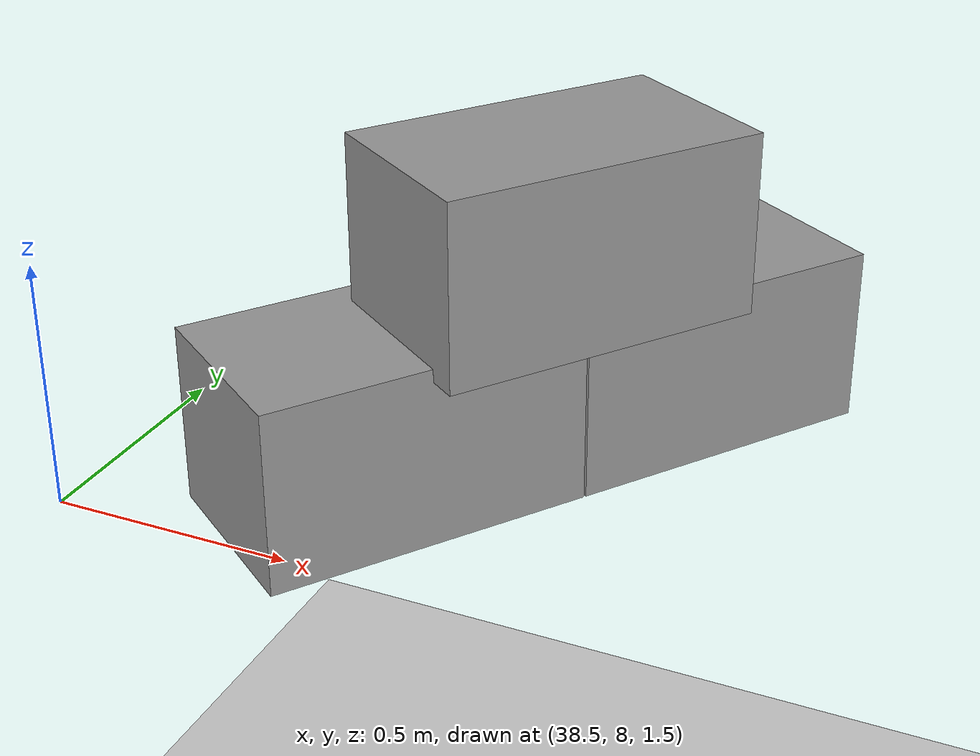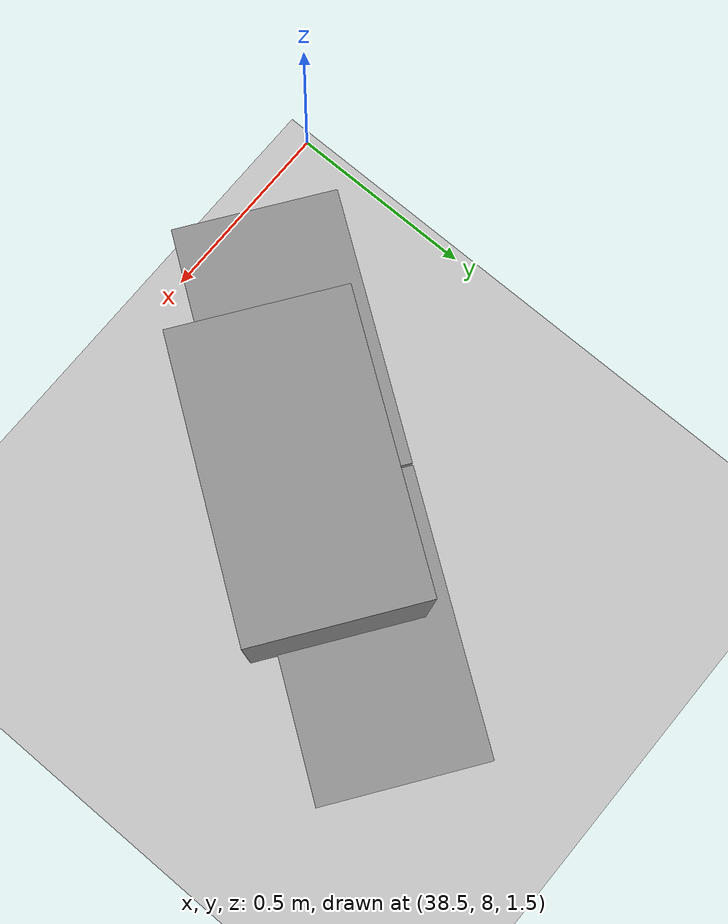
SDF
<sdf version="1.7">
 <world name="default">
  <model name="ground_plane">
   <static>1</static>
   <link name="link">
    <collision name="collision">
     <geometry><plane><normal>0 0 1</normal><size>100 100</size></plane></geometry>
     <surface>
      <contact><collide_bitmask>65535</collide_bitmask></contact>
      <friction><ode><mu>100</mu><mu2>50</mu2></ode></friction>
     </surface>
    </collision>
    <visual name="visual">
     <cast_shadows>0</cast_shadows>
     <geometry><plane><normal>0 0 1</normal><size>100 100</size></plane></geometry>
     <material>
      <script><uri>file://media/materials/scripts/gazebo.material</uri><name>Gazebo/Grey</name></script>
     </material>
    </visual>
   </link>
  </model>
  <model name="Add_Box_clone_clone_3_clone_7">
   <link name="link">
    <inertial>
     <mass>1</mass>
     <inertia>
      <ixx>0.166667</ixx>
      <ixy>0</ixy>
      <ixz>0</ixz>
      <iyy>0.166667</iyy>
      <iyz>0</iyz>
      <izz>0.166667</izz>
     </inertia>
    </inertial>
    <kinematic>1</kinematic>
    <gravity>0</gravity>
    <visual name="visual">
     <geometry><box><size>0.686 0.406 0.381</size></box></geometry>
     <material>
      <script><name>Gazebo/Grey</name><uri>file://media/materials/scripts/gazebo.material</uri></script>
      <shader type="pixel"><normal_map>__default__</normal_map></shader>
      <ambient>0.3 0.3 0.3 1</ambient>
      <diffuse>0.7 0.7 0.7 1</diffuse>
      <specular>0.01 0.01 0.01 1</specular>
      <emissive>0 0 0 1</emissive>
     </material>
    </visual>
    <collision name="collision">
     <geometry><box><size>1 1 1</size></box></geometry>
     <surface>
      <friction>
       <ode><mu>1</mu><mu2>1</mu2><fdir1>0 0 0</fdir1><slip1>0</slip1><slip2>0</slip2></ode>
       <torsional>
        <coefficient>1</coefficient>
        <patch_radius>0</patch_radius>
        <surface_radius>0</surface_radius>
        <use_patch_radius>1</use_patch_radius>
        <ode><slip>0</slip></ode>
       </torsional>
      </friction>
      <bounce><restitution_coefficient>0</restitution_coefficient><threshold>1e+06</threshold></bounce>
      <contact>
       <collide_without_contact>0</collide_without_contact>
       <collide_without_contact_bitmask>1</collide_without_contact_bitmask>
       <collide_bitmask>1</collide_bitmask>
       <ode>
        <soft_cfm>0</soft_cfm>
        <soft_erp>0.2</soft_erp>
        <kp>1e+13</kp>
        <kd>1</kd>
        <max_vel>0.01</max_vel>
        <min_depth>0</min_depth>
       </ode>
       <bullet>
        <split_impulse>1</split_impulse>
        <split_impulse_penetration_threshold>-0.01</split_impulse_penetration_threshold>
        <soft_cfm>0</soft_cfm>
        <soft_erp>0.2</soft_erp>
        <kp>1e+13</kp>
        <kd>1</kd>
       </bullet>
      </contact>
     </surface>
    </collision>
   </link>
   <link name="link_clone">
    <inertial>
     <mass>1</mass>
     <inertia>
      <ixx>0.166667</ixx>
      <ixy>0</ixy>
      <ixz>0</ixz>
      <iyy>0.166667</iyy>
      <iyz>0</iyz>
      <izz>0.166667</izz>
     </inertia>
    </inertial>
    <pose>-0.343354 -0.063316 0.354303 1e-05 -0 0</pose>
    <gravity>0</gravity>
    <visual name="visual">
     <geometry><box><size>0.686 0.406 0.381</size></box></geometry>
     <material>
      <script><name>Gazebo/Grey</name><uri>file://media/materials/scripts/gazebo.material</uri></script>
      <shader type="pixel"><normal_map>__default__</normal_map></shader>
      <ambient>0.3 0.3 0.3 1</ambient>
      <diffuse>0.7 0.7 0.7 1</diffuse>
      <specular>0.01 0.01 0.01 1</specular>
      <emissive>0 0 0 1</emissive>
     </material>
    </visual>
    <collision name="collision">
     <geometry><box><size>1 1 1</size></box></geometry>
     <surface>
      <friction>
       <ode><mu>1</mu><mu2>1</mu2><fdir1>0 0 0</fdir1><slip1>0</slip1><slip2>0</slip2></ode>
       <torsional>
        <coefficient>1</coefficient>
        <patch_radius>0</patch_radius>
        <surface_radius>0</surface_radius>
        <use_patch_radius>1</use_patch_radius>
        <ode><slip>0</slip></ode>
       </torsional>
      </friction>
      <bounce><restitution_coefficient>0</restitution_coefficient><threshold>1e+06</threshold></bounce>
      <contact>
       <collide_without_contact>0</collide_without_contact>
       <collide_without_contact_bitmask>1</collide_without_contact_bitmask>
       <collide_bitmask>1</collide_bitmask>
       <ode>
        <soft_cfm>0</soft_cfm>
        <soft_erp>0.2</soft_erp>
        <kp>1e+13</kp>
        <kd>1</kd>
        <max_vel>0.01</max_vel>
        <min_depth>0</min_depth>
       </ode>
       <bullet>
        <split_impulse>1</split_impulse>
        <split_impulse_penetration_threshold>-0.01</split_impulse_penetration_threshold>
        <soft_cfm>0</soft_cfm>
        <soft_erp>0.2</soft_erp>
        <kp>1e+13</kp>
        <kd>1</kd>
       </bullet>
      </contact>
     </surface>
    </collision>
   </link>
   <link name="link_clone_clone">
    <inertial>
     <mass>1</mass>
     <inertia>
      <ixx>0.166667</ixx>
      <ixy>0</ixy>
      <ixz>0</ixz>
      <iyy>0.166667</iyy>
      <iyz>0</iyz>
      <izz>0.166667</izz>
     </inertia>
    </inertial>
    <pose>-0.690786 -0.000183 -1e-05 2e-05 -0 0</pose>
    <gravity>0</gravity>
    <visual name="visual">
     <geometry><box><size>0.686 0.406 0.381</size></box></geometry>
     <material>
      <script><name>Gazebo/Grey</name><uri>file://media/materials/scripts/gazebo.material</uri></script>
      <shader type="pixel"><normal_map>__default__</normal_map></shader>
      <ambient>0.3 0.3 0.3 1</ambient>
      <diffuse>0.7 0.7 0.7 1</diffuse>
      <specular>0.01 0.01 0.01 1</specular>
      <emissive>0 0 0 1</emissive>
     </material>
    </visual>
    <collision name="collision">
     <geometry><box><size>1 1 1</size></box></geometry>
     <surface>
      <friction>
       <ode><mu>1</mu><mu2>1</mu2><fdir1>0 0 0</fdir1><slip1>0</slip1><slip2>0</slip2></ode>
       <torsional>
        <coefficient>1</coefficient>
        <patch_radius>0</patch_radius>
        <surface_radius>0</surface_radius>
        <use_patch_radius>1</use_patch_radius>
        <ode><slip>0</slip></ode>
       </torsional>
      </friction>
      <bounce><restitution_coefficient>0</restitution_coefficient><threshold>1e+06</threshold></bounce>
      <contact>
       <collide_without_contact>0</collide_without_contact>
       <collide_without_contact_bitmask>1</collide_without_contact_bitmask>
       <collide_bitmask>1</collide_bitmask>
       <ode>
        <soft_cfm>0</soft_cfm>
        <soft_erp>0.2</soft_erp>
        <kp>1e+13</kp>
        <kd>1</kd>
        <max_vel>0.01</max_vel>
        <min_depth>0</min_depth>
       </ode>
       <bullet>
        <split_impulse>1</split_impulse>
        <split_impulse_penetration_threshold>-0.01</split_impulse_penetration_threshold>
        <soft_cfm>0</soft_cfm>
        <soft_erp>0.2</soft_erp>
        <kp>1e+13</kp>
        <kd>1</kd>
       </bullet>
      </contact>
     </surface>
    </collision>
   </link>
   <static>0</static>
   <pose>39.4101 8.94385 1.61518 0 -0 0.950497</pose>
  </model>
 </world>
</sdf>
